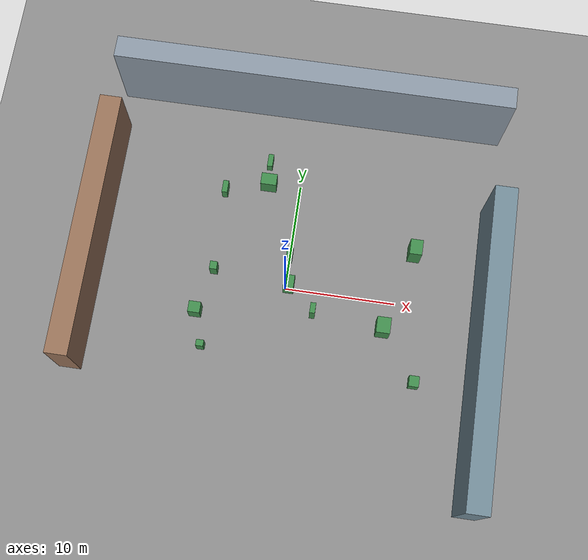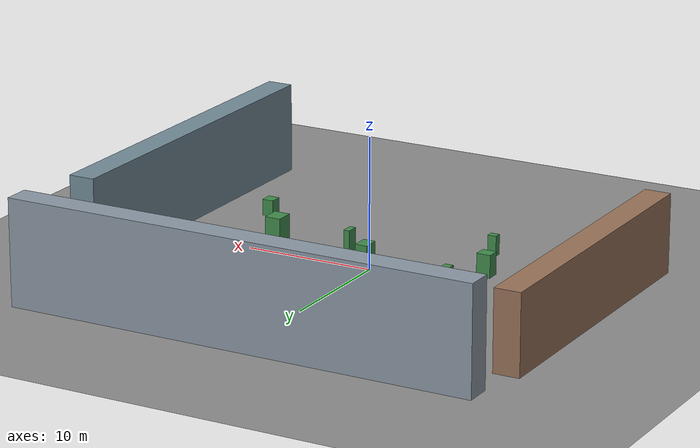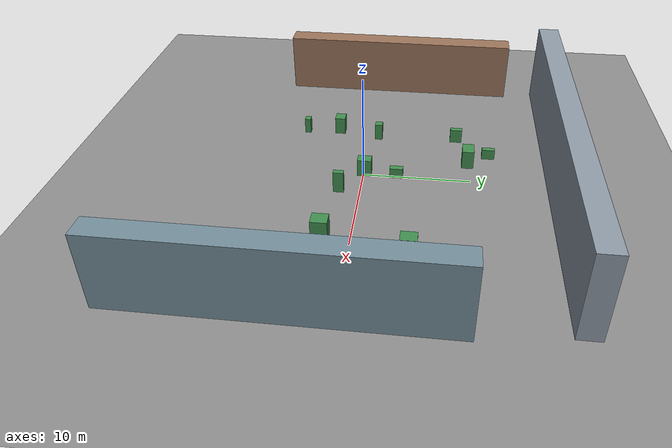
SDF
<?xml version="1.0"?>
<sdf version="1.6">
  <world name="outdoor_normal_high_2">
    <physics name="default_physics" type="ode">
      <real_time_update_rate>1000</real_time_update_rate>
      <max_step_size>0.001</max_step_size>
    </physics>
    <scene>
      <ambient>0.35750000000000004 0.35750000000000004 0.35750000000000004 1</ambient>
      <background>0.08 0.09 0.12 1</background>
      <shadows>true</shadows>
    </scene>
    <light name="sun" type="directional">
      <cast_shadows>true</cast_shadows>
      <pose>0 0 20 0 0 0</pose>
      <diffuse>0.65 0.65 0.65 1.0</diffuse>
      <specular>0.65 0.65 0.65 1.0</specular>
      <direction>-0.5 0.2 -1</direction>
    </light>
    <model name="ground_plane">
      <static>true</static>
      <link name="link">
        <collision name="collision"><geometry><plane><normal>0 0 1</normal><size>100 100</size></plane></geometry></collision>
        <visual name="visual">
          <geometry><plane><normal>0 0 1</normal><size>100 100</size></plane></geometry>
          <material><ambient>0.35 0.35 0.35 1</ambient><diffuse>0.55 0.55 0.55 1</diffuse></material>
        </visual>
      </link>
    </model>

    <model name="building_north">
      <static>true</static>
      <pose>0.0000 18.0000 4.0000 0 0 0</pose>
      <link name="link">
        <collision name="collision"><geometry><box><size>36 2 8</size></box></geometry></collision>
        <visual name="visual">
          <geometry><box><size>36 2 8</size></box></geometry>
          <material><ambient>0.55 0.60 0.65 1</ambient><diffuse>0.55 0.60 0.65 1</diffuse></material>
        </visual>
      </link>
    </model>

    <model name="building_west">
      <static>true</static>
      <pose>-18.0000 2.0000 3.0000 0 0 0</pose>
      <link name="link">
        <collision name="collision"><geometry><box><size>2 24 6</size></box></geometry></collision>
        <visual name="visual">
          <geometry><box><size>2 24 6</size></box></geometry>
          <material><ambient>0.60 0.45 0.35 1</ambient><diffuse>0.60 0.45 0.35 1</diffuse></material>
        </visual>
      </link>
    </model>

    <model name="facade_east">
      <static>true</static>
      <pose>18.0000 -4.0000 3.5000 0 0 0</pose>
      <link name="link">
        <collision name="collision"><geometry><box><size>2 28 7</size></box></geometry></collision>
        <visual name="visual">
          <geometry><box><size>2 28 7</size></box></geometry>
          <material><ambient>0.45 0.55 0.60 1</ambient><diffuse>0.45 0.55 0.60 1</diffuse></material>
        </visual>
      </link>
    </model>

    <model name="outdoor_feature_0">
      <static>true</static>
      <pose>11.2238 4.9258 1.2174 0 0 0</pose>
      <link name="link">
        <collision name="collision"><geometry><box><size>1.1280940046771355 1.402509453661383 2.5244968937257344</size></box></geometry></collision>
        <visual name="visual">
          <geometry><box><size>1.1280940046771355 1.402509453661383 2.5244968937257344</size></box></geometry>
          <material><ambient>0.25 0.55 0.30 1</ambient><diffuse>0.25 0.55 0.30 1</diffuse></material>
        </visual>
      </link>
    </model>

    <model name="outdoor_feature_1">
      <static>true</static>
      <pose>-6.7115 0.8185 0.8708 0 0 0</pose>
      <link name="link">
        <collision name="collision"><geometry><box><size>0.6636038628004886 0.7231379289032349 1.7006668313036668</size></box></geometry></collision>
        <visual name="visual">
          <geometry><box><size>0.6636038628004886 0.7231379289032349 1.7006668313036668</size></box></geometry>
          <material><ambient>0.25 0.55 0.30 1</ambient><diffuse>0.25 0.55 0.30 1</diffuse></material>
        </visual>
      </link>
    </model>

    <model name="outdoor_feature_2">
      <static>true</static>
      <pose>-6.7101 -6.4660 1.1326 0 0 0</pose>
      <link name="link">
        <collision name="collision"><geometry><box><size>0.6810314388693743 0.5698702401162634 1.5448272857213152</size></box></geometry></collision>
        <visual name="visual">
          <geometry><box><size>0.6810314388693743 0.5698702401162634 1.5448272857213152</size></box></geometry>
          <material><ambient>0.25 0.55 0.30 1</ambient><diffuse>0.25 0.55 0.30 1</diffuse></material>
        </visual>
      </link>
    </model>

    <model name="outdoor_feature_3">
      <static>true</static>
      <pose>9.1753 -2.5329 0.7375 0 0 0</pose>
      <link name="link">
        <collision name="collision"><geometry><box><size>1.247877494204477 1.45398935010817 2.4083147416826804</size></box></geometry></collision>
        <visual name="visual">
          <geometry><box><size>1.247877494204477 1.45398935010817 2.4083147416826804</size></box></geometry>
          <material><ambient>0.25 0.55 0.30 1</ambient><diffuse>0.25 0.55 0.30 1</diffuse></material>
        </visual>
      </link>
    </model>

    <model name="outdoor_feature_4">
      <static>true</static>
      <pose>-3.1049 11.6439 1.2486 0 0 0</pose>
      <link name="link">
        <collision name="collision"><geometry><box><size>0.4837858577131566 1.2026718732523676 1.0080284820067489</size></box></geometry></collision>
        <visual name="visual">
          <geometry><box><size>0.4837858577131566 1.2026718732523676 1.0080284820067489</size></box></geometry>
          <material><ambient>0.25 0.55 0.30 1</ambient><diffuse>0.25 0.55 0.30 1</diffuse></material>
        </visual>
      </link>
    </model>

    <model name="outdoor_feature_5">
      <static>true</static>
      <pose>-7.7695 -3.2564 0.7307 0 0 0</pose>
      <link name="link">
        <collision name="collision"><geometry><box><size>1.0843698826737895 1.0054958564970073 1.9124128725637801</size></box></geometry></collision>
        <visual name="visual">
          <geometry><box><size>1.0843698826737895 1.0054958564970073 1.9124128725637801</size></box></geometry>
          <material><ambient>0.25 0.55 0.30 1</ambient><diffuse>0.25 0.55 0.30 1</diffuse></material>
        </visual>
      </link>
    </model>

    <model name="outdoor_feature_6">
      <static>true</static>
      <pose>-2.9744 9.7650 0.6238 0 0 0</pose>
      <link name="link">
        <collision name="collision"><geometry><box><size>1.45856289953517 1.0944503961888932 2.339699004788466</size></box></geometry></collision>
        <visual name="visual">
          <geometry><box><size>1.45856289953517 1.0944503961888932 2.339699004788466</size></box></geometry>
          <material><ambient>0.25 0.55 0.30 1</ambient><diffuse>0.25 0.55 0.30 1</diffuse></material>
        </visual>
      </link>
    </model>

    <model name="outdoor_feature_7">
      <static>true</static>
      <pose>-6.9123 8.6090 0.7422 0 0 0</pose>
      <link name="link">
        <collision name="collision"><geometry><box><size>0.5056654562791822 1.1488275217382988 1.3884551073591231</size></box></geometry></collision>
        <visual name="visual">
          <geometry><box><size>0.5056654562791822 1.1488275217382988 1.3884551073591231</size></box></geometry>
          <material><ambient>0.25 0.55 0.30 1</ambient><diffuse>0.25 0.55 0.30 1</diffuse></material>
        </visual>
      </link>
    </model>

    <model name="outdoor_feature_8">
      <static>true</static>
      <pose>-0.0750 3.1027 0.5291 0 0 0</pose>
      <link name="link">
        <collision name="collision"><geometry><box><size>0.5648242837542541 1.2352427410355973 1.0176837685146791</size></box></geometry></collision>
        <visual name="visual">
          <geometry><box><size>0.5648242837542541 1.2352427410355973 1.0176837685146791</size></box></geometry>
          <material><ambient>0.25 0.55 0.30 1</ambient><diffuse>0.25 0.55 0.30 1</diffuse></material>
        </visual>
      </link>
    </model>

    <model name="outdoor_feature_9">
      <static>true</static>
      <pose>2.7335 -1.9390 1.0732 0 0 0</pose>
      <link name="link">
        <collision name="collision"><geometry><box><size>0.48354803059234935 0.9540286151009099 2.105618171499854</size></box></geometry></collision>
        <visual name="visual">
          <geometry><box><size>0.48354803059234935 0.9540286151009099 2.105618171499854</size></box></geometry>
          <material><ambient>0.25 0.55 0.30 1</ambient><diffuse>0.25 0.55 0.30 1</diffuse></material>
        </visual>
      </link>
    </model>

    <model name="outdoor_feature_10">
      <static>true</static>
      <pose>0.2732 0.1551 1.2556 0 0 0</pose>
      <link name="link">
        <collision name="collision"><geometry><box><size>0.9521202601037503 1.2955072635627878 1.6648261176225416</size></box></geometry></collision>
        <visual name="visual">
          <geometry><box><size>0.9521202601037503 1.2955072635627878 1.6648261176225416</size></box></geometry>
          <material><ambient>0.25 0.55 0.30 1</ambient><diffuse>0.25 0.55 0.30 1</diffuse></material>
        </visual>
      </link>
    </model>

    <model name="outdoor_feature_11">
      <static>true</static>
      <pose>12.4251 -7.0609 0.8202 0 0 0</pose>
      <link name="link">
        <collision name="collision"><geometry><box><size>0.8930019504662193 0.9721832861067835 1.2504818913692264</size></box></geometry></collision>
        <visual name="visual">
          <geometry><box><size>0.8930019504662193 0.9721832861067835 1.2504818913692264</size></box></geometry>
          <material><ambient>0.25 0.55 0.30 1</ambient><diffuse>0.25 0.55 0.30 1</diffuse></material>
        </visual>
      </link>
    </model>
  </world>
</sdf>
